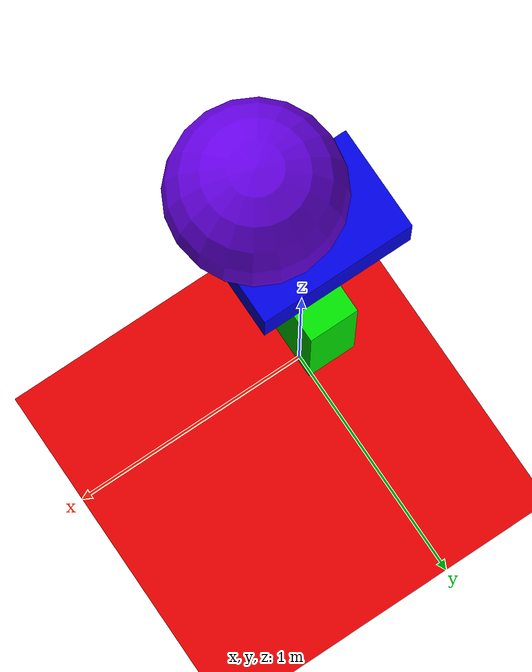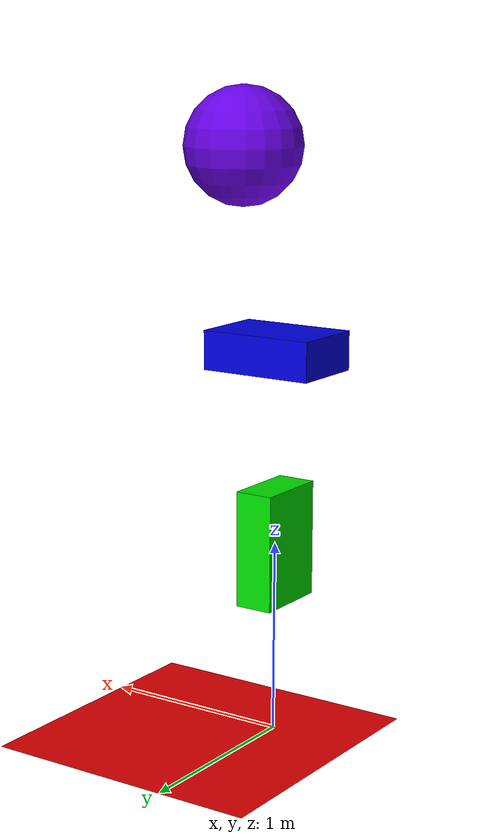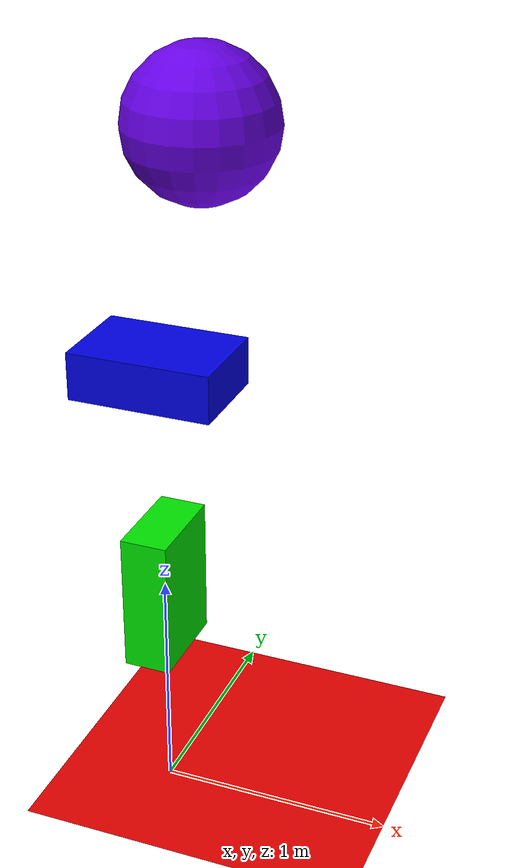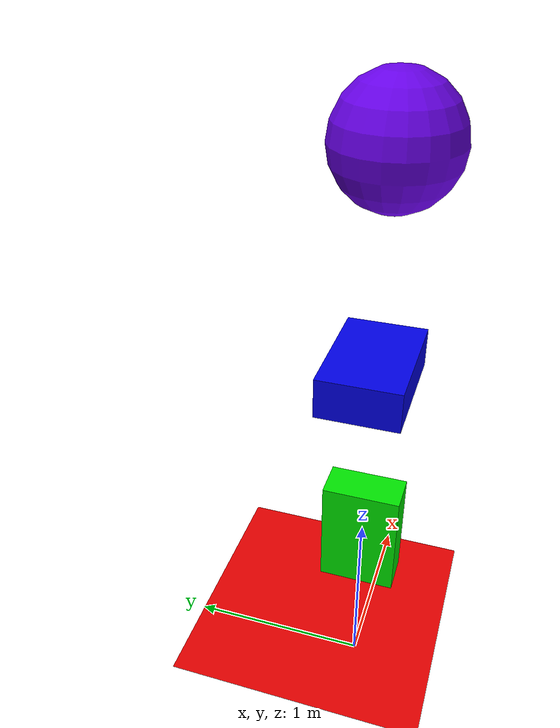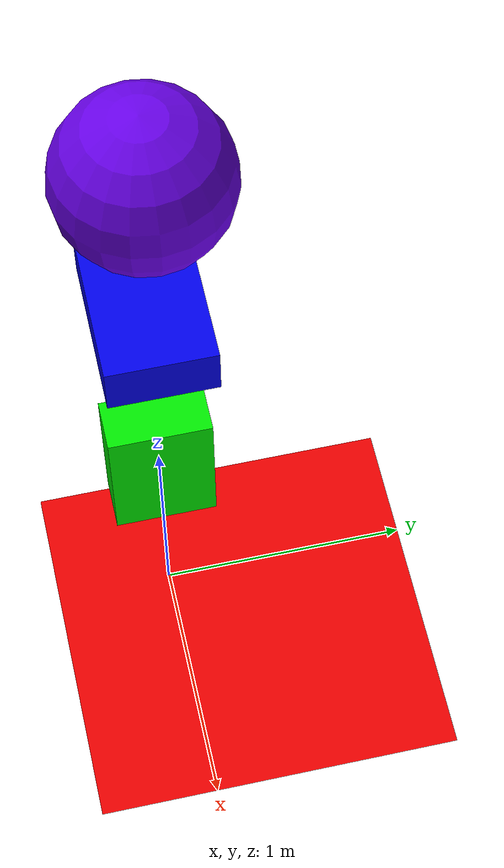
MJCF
<mujoco>
    <worldbody>
        <light diffuse=".5 .5 .5" pos="0 0 3" dir="0 0 -1" />
        <geom type="plane" size="1 1 0.1" rgba=".9 0 0 1" />
        <body pos="0 0 1" >
            <joint type="free" />
            <geom type="box" size=".1 .2 .3" rgba="0 0.9 0 1"/>
        </body>

        <body pos="0 0 2" euler=" 0 90 0">
            <joint type="free" />
            <geom type="box" size=".1 .2 .3" rgba="0 0. 0.9 1"/>
        </body>

        <body pos=".2 0 3">
            <joint type="free" />
            <geom type="sphere" size=".3" rgba="0.4 0. 0.9 1"/>
        </body>

    </worldbody>
</mujoco>
